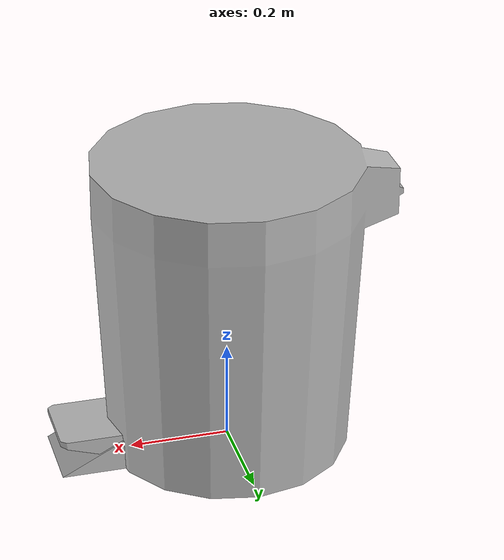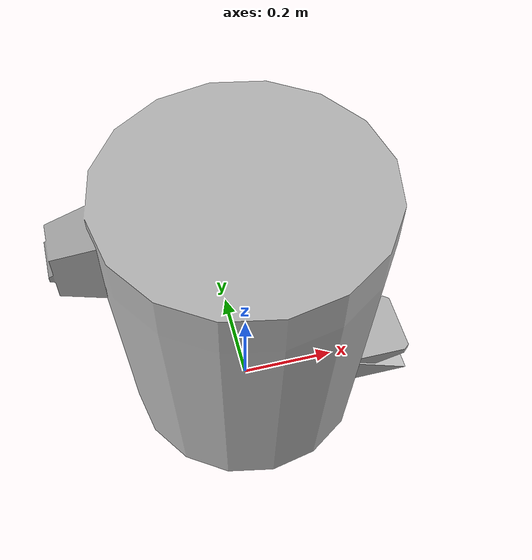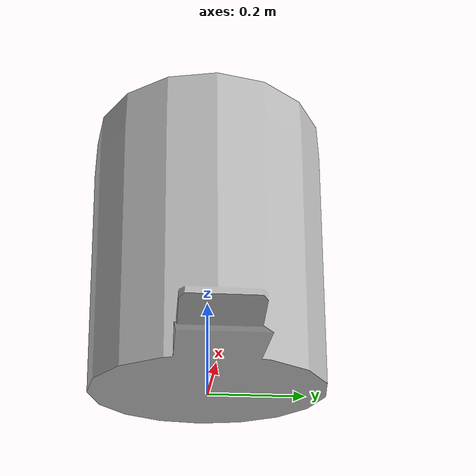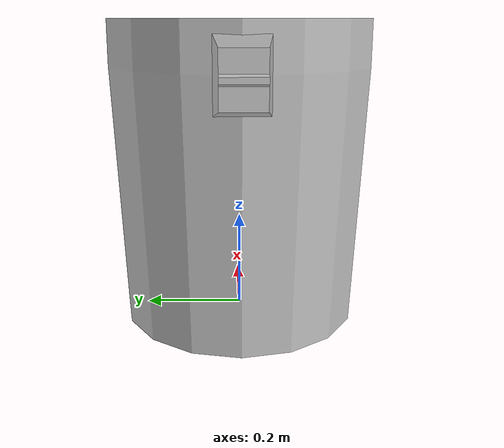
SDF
<?xml version="1.0" ?>
<sdf version="1.5">
  <model name="wastebasket">
    <static>true</static>
    <link name="link">
      <!-- face +X -->
      <pose>0 0 0 0 0 1.57079632679</pose>
      <collision name="collision">
        <pose>0.001581 0.000308 0.312969 0 0 0</pose>
        <geometry>
          <cylinder>
            <radius>0.27</radius>
            <length>0.63</length>
          </cylinder>
        </geometry>
      </collision>
      <visual name="visual">
        <geometry>
          <mesh>
            <uri>model://wastebasket/meshes/wastebasket.dae</uri>
            <scale>1.4 1.4 1.4</scale>
          </mesh>
        </geometry>
      </visual>
    </link>
  </model>
</sdf>
